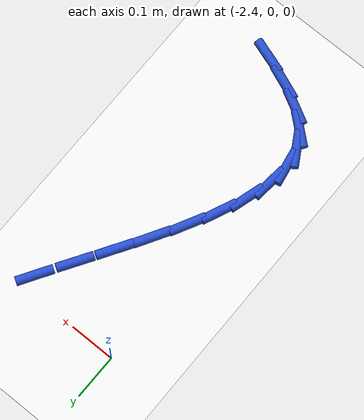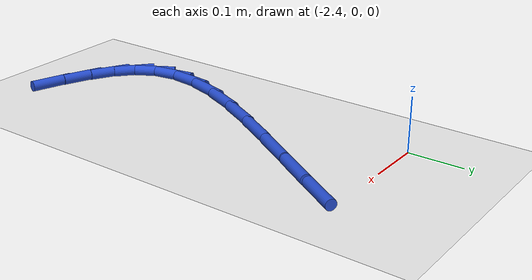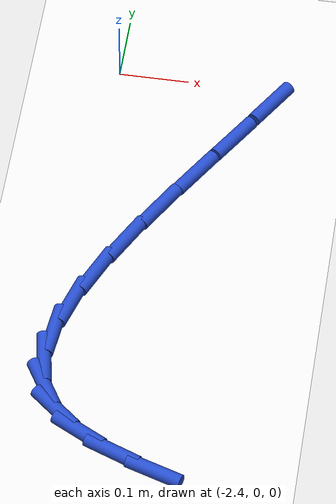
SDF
<sdf version="1.6">
 <world name="default">
  <model name="ground_plane">
   <static>1</static>
   <link name="link">
    <collision name="collision">
     <geometry><plane><normal>0 0 1</normal><size>100 100</size></plane></geometry>
     <surface><friction><ode><mu>100</mu><mu2>50</mu2></ode></friction></surface>
    </collision>
    <visual name="visual">
     <cast_shadows>0</cast_shadows>
     <geometry><plane><normal>0 0 1</normal><size>100 100</size></plane></geometry>
     <material>
      <script><uri>file://media/materials/scripts/gazebo.material</uri><name>Gazebo/WhiteGlow</name></script>
     </material>
    </visual>
   </link>
  </model>
  <model name="line">
   <link name="link_55">
    <pose>-2.174827345512825 -0.031215570954974514 0.01 0 1.57 1.0151098302691823</pose>
    <collision name="collision">
     <geometry><cylinder><radius>0.01</radius><length>0.08</length></cylinder></geometry>
    </collision>
    <visual name="visual">
     <material>
      <script><name>Gazebo/Blue</name><uri>file://media/materials/scripts/gazebo.material</uri></script>
     </material>
     <geometry><cylinder><radius>0.01</radius><length>0.08</length></cylinder></geometry>
    </visual>
   </link>
   <link name="link_56">
    <pose>-2.2198511466709556 -0.10372272061378013 0.01 0 1.57 1.0080022717611326</pose>
    <collision name="collision">
     <geometry><cylinder><radius>0.01</radius><length>0.08</length></cylinder></geometry>
    </collision>
    <visual name="visual">
     <material>
      <script><name>Gazebo/Blue</name><uri>file://media/materials/scripts/gazebo.material</uri></script>
     </material>
     <geometry><cylinder><radius>0.01</radius><length>0.08</length></cylinder></geometry>
    </visual>
   </link>
   <link name="link_57">
    <pose>-2.264280511554624 -0.1741506480259431 0.01 0 1.57 1.0153548941483197</pose>
    <collision name="collision">
     <geometry><cylinder><radius>0.01</radius><length>0.08</length></cylinder></geometry>
    </collision>
    <visual name="visual">
     <material>
      <script><name>Gazebo/Blue</name><uri>file://media/materials/scripts/gazebo.material</uri></script>
     </material>
     <geometry><cylinder><radius>0.01</radius><length>0.08</length></cylinder></geometry>
    </visual>
   </link>
   <link name="link_58">
    <pose>-2.306409854747163 -0.2420336246037086 0.01 0 1.57 1.039489665438065</pose>
    <collision name="collision">
     <geometry><cylinder><radius>0.01</radius><length>0.08</length></cylinder></geometry>
    </collision>
    <visual name="visual">
     <material>
      <script><name>Gazebo/Blue</name><uri>file://media/materials/scripts/gazebo.material</uri></script>
     </material>
     <geometry><cylinder><radius>0.01</radius><length>0.08</length></cylinder></geometry>
    </visual>
   </link>
   <link name="link_59">
    <pose>-2.34453359083191 -0.306905921759325 0.01 0 1.57 1.0850575796183672</pose>
    <collision name="collision">
     <geometry><cylinder><radius>0.01</radius><length>0.08</length></cylinder></geometry>
    </collision>
    <visual name="visual">
     <material>
      <script><name>Gazebo/Blue</name><uri>file://media/materials/scripts/gazebo.material</uri></script>
     </material>
     <geometry><cylinder><radius>0.01</radius><length>0.08</length></cylinder></geometry>
    </visual>
   </link>
   <link name="link_60">
    <pose>-2.376946134392199 -0.36830181090503755 0.01 0 1.57 1.160436655111859</pose>
    <collision name="collision">
     <geometry><cylinder><radius>0.01</radius><length>0.08</length></cylinder></geometry>
    </collision>
    <visual name="visual">
     <material>
      <script><name>Gazebo/Blue</name><uri>file://media/materials/scripts/gazebo.material</uri></script>
     </material>
     <geometry><cylinder><radius>0.01</radius><length>0.08</length></cylinder></geometry>
    </visual>
   </link>
   <link name="link_61">
    <pose>-2.401941900011364 -0.42575556345309423 0.01 0 1.57 1.2800377748624385</pose>
    <collision name="collision">
     <geometry><cylinder><radius>0.01</radius><length>0.08</length></cylinder></geometry>
    </collision>
    <visual name="visual">
     <material>
      <script><name>Gazebo/Blue</name><uri>file://media/materials/scripts/gazebo.material</uri></script>
     </material>
     <geometry><cylinder><radius>0.01</radius><length>0.08</length></cylinder></geometry>
    </visual>
   </link>
   <link name="link_62">
    <pose>-2.417815302272743 -0.4788014508157408 0.01 0 1.57 1.4664391517813007</pose>
    <collision name="collision">
     <geometry><cylinder><radius>0.01</radius><length>0.08</length></cylinder></geometry>
    </collision>
    <visual name="visual">
     <material>
      <script><name>Gazebo/Blue</name><uri>file://media/materials/scripts/gazebo.material</uri></script>
     </material>
     <geometry><cylinder><radius>0.01</radius><length>0.08</length></cylinder></geometry>
    </visual>
   </link>
   <link name="link_63">
    <pose>-2.422860755759669 -0.5269737444052252 0.01 0 1.57 -1.3977248486307434</pose>
    <collision name="collision">
     <geometry><cylinder><radius>0.01</radius><length>0.08</length></cylinder></geometry>
    </collision>
    <visual name="visual">
     <material>
      <script><name>Gazebo/Blue</name><uri>file://media/materials/scripts/gazebo.material</uri></script>
     </material>
     <geometry><cylinder><radius>0.01</radius><length>0.08</length></cylinder></geometry>
    </visual>
   </link>
   <link name="link_64">
    <pose>-2.415372675055478 -0.5698067156337928 0.01 0 1.57 -1.0401669575457682</pose>
    <collision name="collision">
     <geometry><cylinder><radius>0.01</radius><length>0.08</length></cylinder></geometry>
    </collision>
    <visual name="visual">
     <material>
      <script><name>Gazebo/Blue</name><uri>file://media/materials/scripts/gazebo.material</uri></script>
     </material>
     <geometry><cylinder><radius>0.01</radius><length>0.08</length></cylinder></geometry>
    </visual>
   </link>
   <link name="link_65">
    <pose>-2.393645943569989 -0.6068348522725813 0.01 0 1.57 -0.7038714184108001</pose>
    <collision name="collision">
     <geometry><cylinder><radius>0.01</radius><length>0.08</length></cylinder></geometry>
    </collision>
    <visual name="visual">
     <material>
      <script><name>Gazebo/Blue</name><uri>file://media/materials/scripts/gazebo.material</uri></script>
     </material>
     <geometry><cylinder><radius>0.01</radius><length>0.08</length></cylinder></geometry>
    </visual>
   </link>
   <link name="link_66">
    <pose>-2.356907783339585 -0.6380229073554 0.01 0 1.57 -0.4926135151412169</pose>
    <collision name="collision">
     <geometry><cylinder><radius>0.01</radius><length>0.08</length></cylinder></geometry>
    </collision>
    <visual name="visual">
     <material>
      <script><name>Gazebo/Blue</name><uri>file://media/materials/scripts/gazebo.material</uri></script>
     </material>
     <geometry><cylinder><radius>0.01</radius><length>0.08</length></cylinder></geometry>
    </visual>
   </link>
   <link name="link_67">
    <pose>-2.307269140146066 -0.6646664445458502 0.01 0 1.57 -0.3762103975825701</pose>
    <collision name="collision">
     <geometry><cylinder><radius>0.01</radius><length>0.08</length></cylinder></geometry>
    </collision>
    <visual name="visual">
     <material>
      <script><name>Gazebo/Blue</name><uri>file://media/materials/scripts/gazebo.material</uri></script>
     </material>
     <geometry><cylinder><radius>0.01</radius><length>0.08</length></cylinder></geometry>
    </visual>
   </link>
   <link name="link_68">
    <pose>-2.247396781552064 -0.6883175338859207 0.01 0 1.57 -0.3181556081457203</pose>
    <collision name="collision">
     <geometry><cylinder><radius>0.01</radius><length>0.08</length></cylinder></geometry>
    </collision>
    <visual name="visual">
     <material>
      <script><name>Gazebo/Blue</name><uri>file://media/materials/scripts/gazebo.material</uri></script>
     </material>
     <geometry><cylinder><radius>0.01</radius><length>0.08</length></cylinder></geometry>
    </visual>
   </link>
  </model>
 </world>
</sdf>
